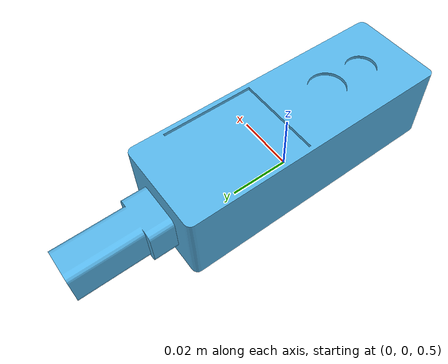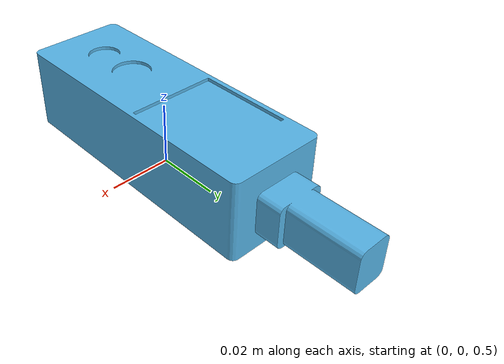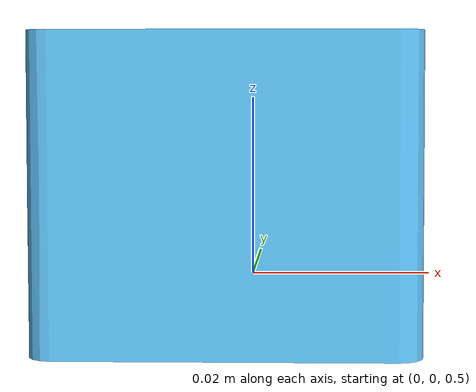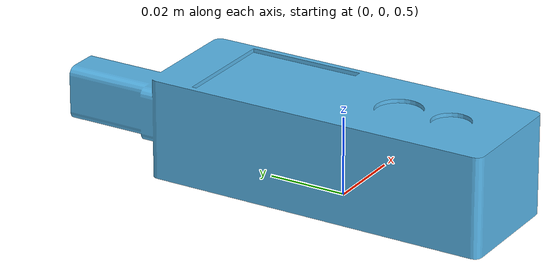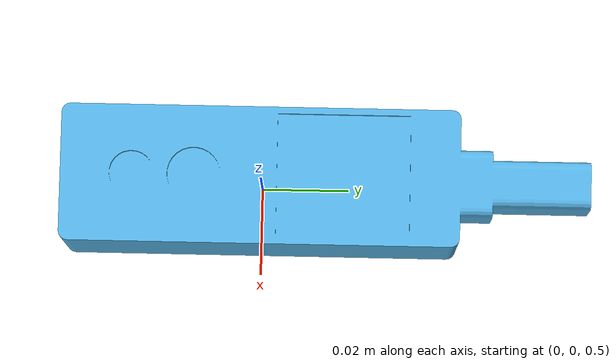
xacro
<?xml version="1.0"?>
<robot name="sensor_o3r255" xmlns:xacro="http://ros.org/wiki/xacro">
  <xacro:include filename="$(find ifm3d_description)/urdf/o3r255_macro.xacro" />

  <link name="world">
  </link>

  <xacro:o3r255 name="camera0" parent="world">
    <origin xyz="0 0 0.5" rpy="0 0 ${pi/2}" />
  </xacro:o3r255>
</robot>

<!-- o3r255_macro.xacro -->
<robot name="sensor_o3r255" xmlns:xacro="http://ros.org/wiki/xacro">
  <xacro:macro name="o3r255" params="*origin parent name">
    <link name="${name}_link">
      <visual>
        <origin xyz="0 0 0" rpy="0 0 0"/>
        <geometry>
          <mesh filename="package://ifm3d_description/meshes/visual/ifm_o3r225.dae"
                scale="1 1 1"/>
        </geometry>
      </visual>
      <collision>
        <origin xyz="0 0 0" rpy="0 0 0"/>
        <geometry>
          <mesh filename="package://ifm3d_description/meshes/collision/ifm_o3r225.stl"
                scale="1 1 1"/>
        </geometry>
      </collision>
    </link>
    <joint name="${name}_joint" type="fixed">
      <parent link="${parent}" />
      <child link = "${name}_link" />
      <xacro:insert_block name="origin" />
    </joint>
    <link name="${name}_optical_link">
    </link>
    <joint name="${name}_camera_optical_joint" type="fixed">
      <parent link="${name}_link" />
      <child link = "${name}_optical_link" />
      <origin xyz="0 0 0" rpy="0 0 0" />
    </joint>
  </xacro:macro>
</robot>
